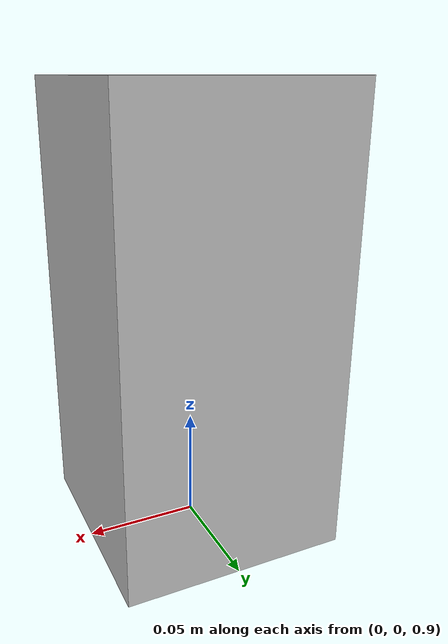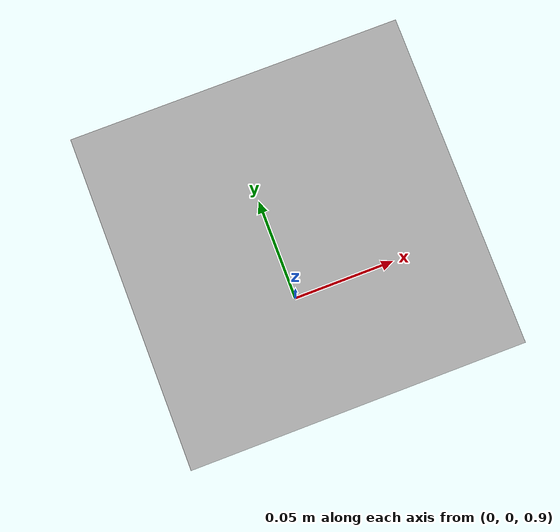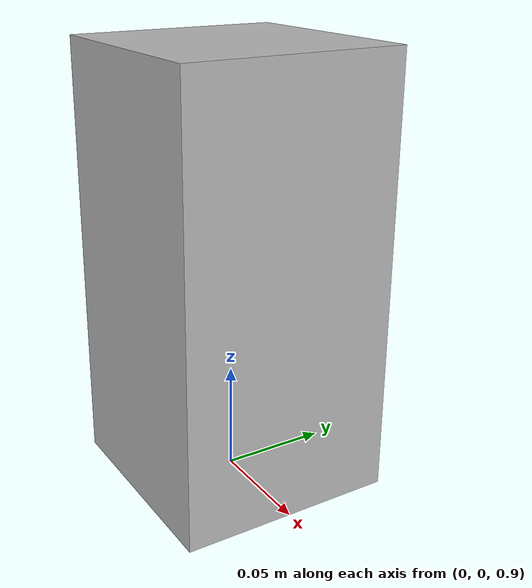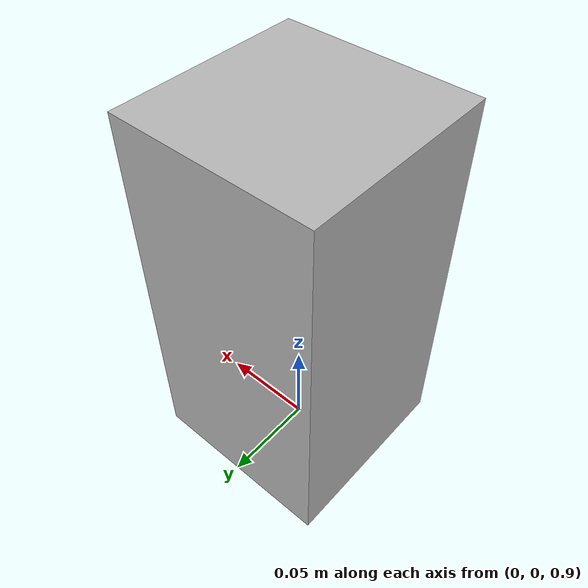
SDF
<sdf version="1.7">
 <world name="default">
  <plugin name="gazebo_ros_state" filename="libgazebo_ros_state.so"><update_rate>1.0</update_rate></plugin>
  <model name="ground_plane">
   <static>1</static>
   <link name="link">
    <collision name="collision">
     <geometry><plane><normal>0 0 1</normal><size>100 100</size></plane></geometry>
     <surface>
      <contact><collide_bitmask>65535</collide_bitmask></contact>
      <friction><ode><mu>100</mu><mu2>50</mu2></ode></friction>
     </surface>
    </collision>
    <visual name="visual">
     <cast_shadows>0</cast_shadows>
     <geometry><plane><normal>0 0 1</normal><size>100 100</size></plane></geometry>
     <material>
      <script><uri>file://media/materials/scripts/gazebo.material</uri><name>Gazebo/Grey</name></script>
     </material>
    </visual>
   </link>
  </model>
  <gravity>0 0 0</gravity>
  <magnetic_field>6e-06 2.3e-05 -4.2e-05</magnetic_field>
  <atmosphere type="adiabatic"/>
  <physics type="ode">
   <max_step_size>0.001</max_step_size>
   <real_time_factor>1</real_time_factor>
   <real_time_update_rate>1000</real_time_update_rate>
  </physics>
  <scene><ambient>0.4 0.4 0.4 1</ambient><background>0.7 0.7 0.7 1</background><shadows>1</shadows></scene>
  <spherical_coordinates>
   <surface_model>EARTH_WGS84</surface_model>
   <latitude_deg>0</latitude_deg>
   <longitude_deg>0</longitude_deg>
   <elevation>0</elevation>
   <heading_deg>0</heading_deg>
  </spherical_coordinates>
  <model name="marker_cube">
   <static>0</static>
   <link name="body">
    <inertial>
     <mass>1.25</mass>
     <inertia>
      <ixx>0.00520833</ixx>
      <ixy>0</ixy>
      <ixz>0</ixz>
      <iyy>0.00520833</iyy>
      <iyz>0</iyz>
      <izz>0.00208333</izz>
     </inertia>
    </inertial>
    <collision name="body_collision_collision">
     <geometry><box><size>0.1 0.1 0.2</size></box></geometry>
    </collision>
    <visual name="body_visual_cube_visual">
     <geometry>
      <mesh>
       <scale>1 1 1</scale>
       <uri>/home/frank20a/dev-ws/data/models/simple_targets/ship1/marker_box.dae</uri>
      </mesh>
     </geometry>
    </visual>
    <gravity>0</gravity>
   </link>
   <joint name="body_fix" type="fixed"><parent>estimated_tf</parent><child>body</child></joint>
   <plugin name="controller_plugin" filename="libgazebo_ros_force.so">
    <link_name>body</link_name>
    <force_frame>link</force_frame>
    <ros><namespace>target</namespace></ros>
   </plugin>
   <plugin name="p3d" filename="libgazebo_ros_p3d.so">
    <frame_name>world</frame_name>
    <body_name>body</body_name>
    <topic_name>odom</topic_name>
    <update_rate>30.0</update_rate>
    <ros><namespace>target</namespace></ros>
   </plugin>
   <pose>0 0 1 0 -0 0</pose>
  </model>
  <light name="light1" type="point">
   <pose>-5.74255 -0.427307 1 0 -0 0</pose>
   <diffuse>0.5 0.5 0.5 1</diffuse>
   <specular>0.1 0.1 0.1 1</specular>
   <attenuation>
    <range>150</range>
    <constant>-1</constant>
    <linear>0.01</linear>
    <quadratic>0.001</quadratic>
   </attenuation>
   <cast_shadows>0</cast_shadows>
   <direction>0 0 -1</direction>
   <spot><inner_angle>0</inner_angle><outer_angle>0</outer_angle><falloff>0</falloff></spot>
  </light>
  <light name="light2" type="point">
   <pose>0.004052 8.09314 10 0 -0 0</pose>
   <diffuse>0.498039 0.498039 0.498039 1</diffuse>
   <specular>0.0980392 0.0980392 0.0980392 1</specular>
   <direction>0 0 -1</direction>
   <attenuation>
    <range>150</range>
    <constant>-1</constant>
    <linear>0.01</linear>
    <quadratic>0.001</quadratic>
   </attenuation>
   <cast_shadows>0</cast_shadows>
   <spot><inner_angle>0</inner_angle><outer_angle>0</outer_angle><falloff>0</falloff></spot>
  </light>
  <light name="light3" type="point">
   <pose>0.239835 -8.57674 10 0 -0 0</pose>
   <diffuse>0.498039 0.498039 0.498039 1</diffuse>
   <specular>0.0980392 0.0980392 0.0980392 1</specular>
   <direction>0 0 -1</direction>
   <attenuation>
    <range>150</range>
    <constant>-1</constant>
    <linear>0.01</linear>
    <quadratic>0.001</quadratic>
   </attenuation>
   <cast_shadows>0</cast_shadows>
   <spot><inner_angle>0</inner_angle><outer_angle>0</outer_angle><falloff>0</falloff></spot>
  </light>
  <light name="light4" type="point">
   <pose>15.0737 1.15966 10 0 -0 0</pose>
   <diffuse>0.498039 0.498039 0.498039 1</diffuse>
   <specular>0.0980392 0.0980392 0.0980392 1</specular>
   <direction>0 0 -1</direction>
   <attenuation>
    <range>150</range>
    <constant>-1</constant>
    <linear>0.01</linear>
    <quadratic>0.001</quadratic>
   </attenuation>
   <cast_shadows>0</cast_shadows>
   <spot><inner_angle>0</inner_angle><outer_angle>0</outer_angle><falloff>0</falloff></spot>
  </light>
 </world>
</sdf>
